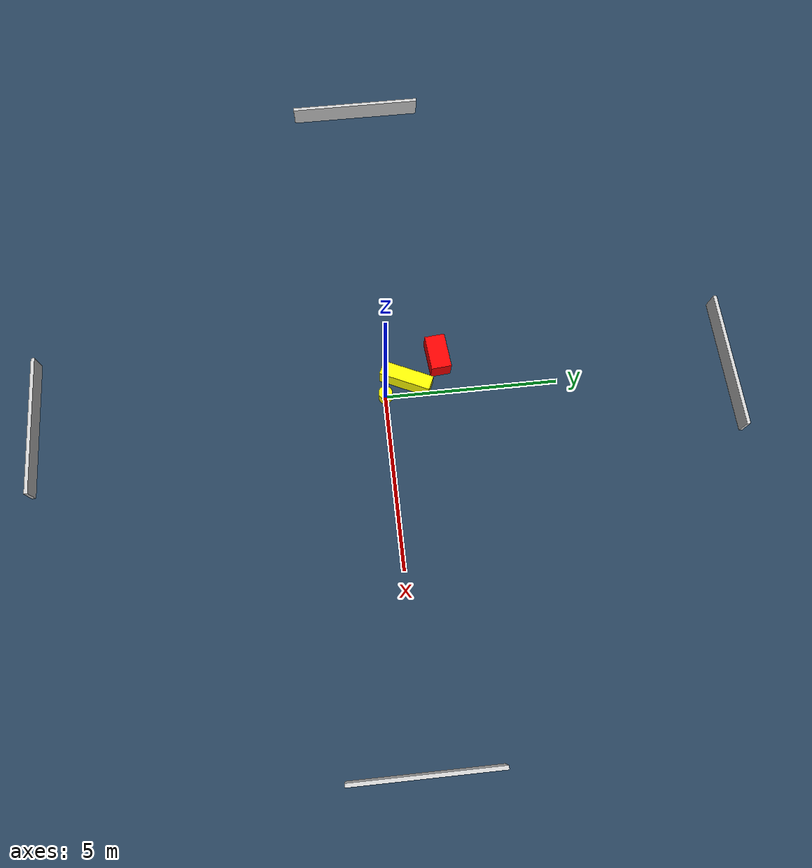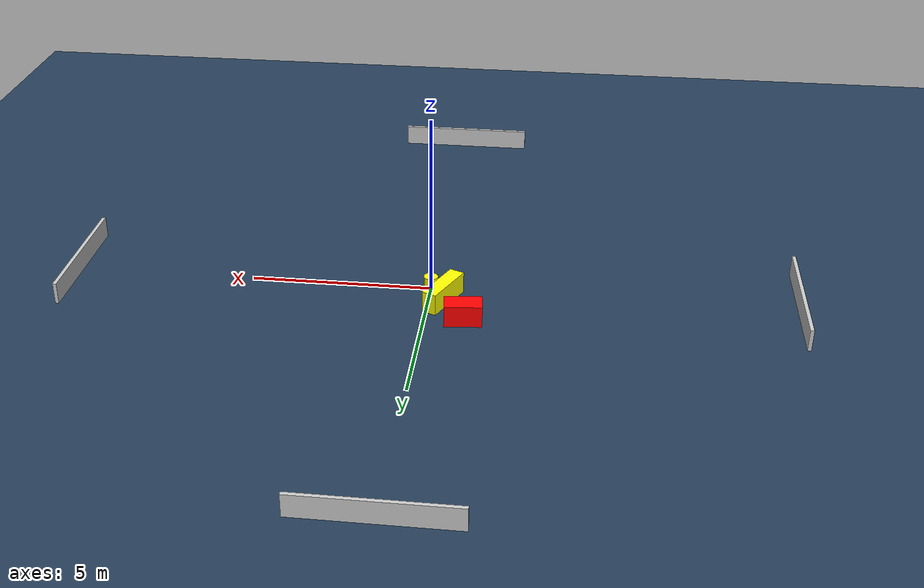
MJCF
<?xml version="1.0" ?>
<mujoco model="generated_environment">
  <option timestep="0.01" integrator="RK4" cone="elliptic"/>
  <default>
    <geom density="1"/>
  </default>
  <asset>
    <texture builtin="gradient" height="3072" name="skybox" rgb1="0.3 0.5 0.7" rgb2="0 0 0" type="skybox" width="512"/>
    <texture builtin="checker" height="300" name="groundplane" rgb1="0.2 0.3 0.4" rgb2="0.1 0.2 0.3" type="2d" width="300"/>
    <material name="groundplane" reflectance="0.2" texrepeat="5 5" texture="groundplane"/>
  </asset>
  <worldbody>
    <light dir="0 0 -1" directional="true" pos="0 0 1.5"/>
    <geom condim="3" friction="0.5 0.005 0.001" material="groundplane" name="floor" pos="0 0 0" size="0 0 0.05" type="plane"/>
    <body name="walls">
      <geom name="wall_1" condim="4" pos="-10.0 0.0 0.3" rgba="0.800000011920929 0.800000011920929 0.800000011920929 1.0" size="0.05 2.0 0.3" type="box"/>
      <geom name="wall_2" condim="4" pos="10.0 0.0 0.3" rgba="0.800000011920929 0.800000011920929 0.800000011920929 1.0" size="0.05 2.0 0.3" type="box"/>
      <geom name="wall_3" condim="4" pos="0.0 -10.0 0.3" rgba="0.800000011920929 0.800000011920929 0.800000011920929 1.0" size="2.0 0.05 0.3" type="box"/>
      <geom name="wall_4" condim="4" pos="0.0 10.0 0.3" rgba="0.800000011920929 0.800000011920929 0.800000011920929 1.0" size="2.0 0.05 0.3" type="box"/>
    </body>
    <body name="robot">
      <joint name="joint_x" type="slide" pos="0 0 0" axis="1 0 0"/>
      <joint name="joint_y" type="slide" pos="0 0 0" axis="0 1 0"/>
      <geom name="robot" type="cylinder" pos="0.0 0.0 0.2" size="0.2 0.2 0.0" mass="5.0" friction="1.0 0.005 0.0001" condim="4" rgba="1.0 1.0 0.0 1.0"/>
    </body>
    <body name="obstacle_1_movable">
      <geom name="obstacle_1_movable" condim="4" pos="-0.4091767414052979 0.6417183479048953 0.3" euler="0 0 155.2412468691656" friction="0.0 0.005 0.001" rgba="1.0 1.0 0.0 1.0" size="0.20913171918207363 0.7441775356085949 0.3" type="box" mass="0.1"/>
      <joint type="free"/>
    </body>
    <body name="obstacle_2_static">
      <geom name="obstacle_2_static" condim="4" pos="-1.0476496838154534 1.6248403008257783 0.3" euler="0 0 95.1097318795826" friction="0.0 0.005 0.001" rgba="1.0 0.0 0.0 1.0" size="0.2911941446653908 0.5073487631557642 0.3" type="box"/>
    </body>
  </worldbody>
  <actuator>
    <motor name="actuator_x" joint="joint_x" gear="1" ctrlrange="-1 1"/>
    <motor name="actuator_y" joint="joint_y" gear="1" ctrlrange="-1 1"/>
  </actuator>
</mujoco>
